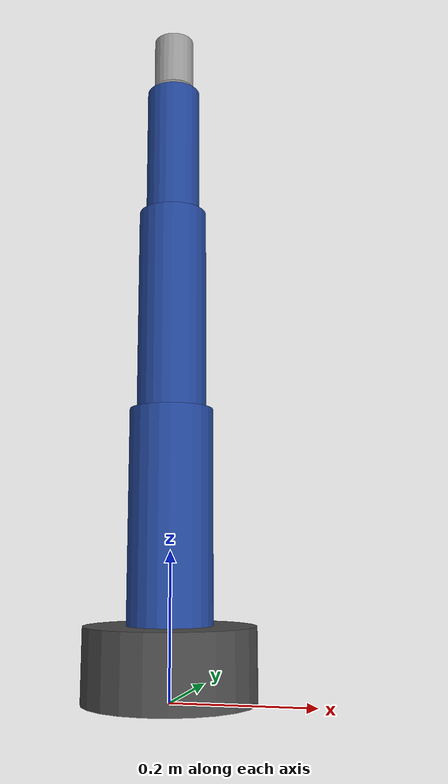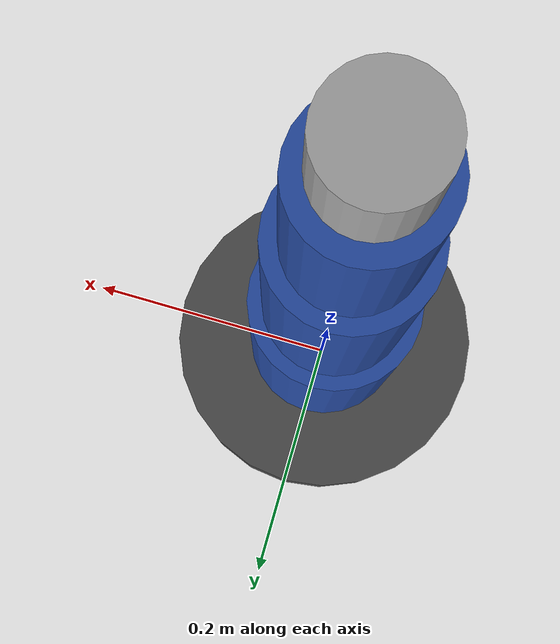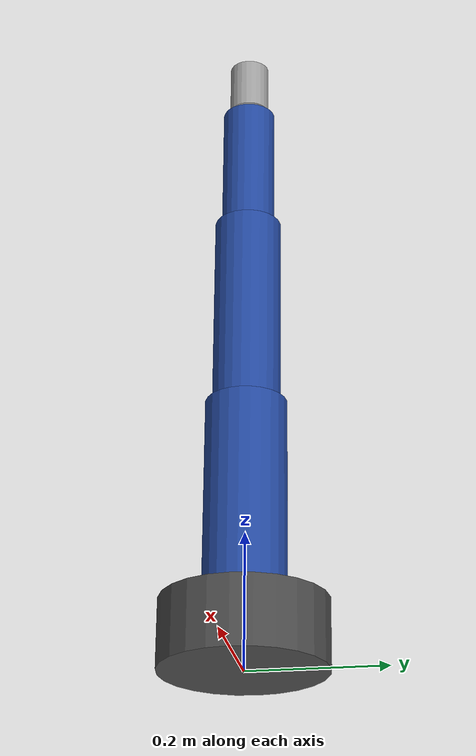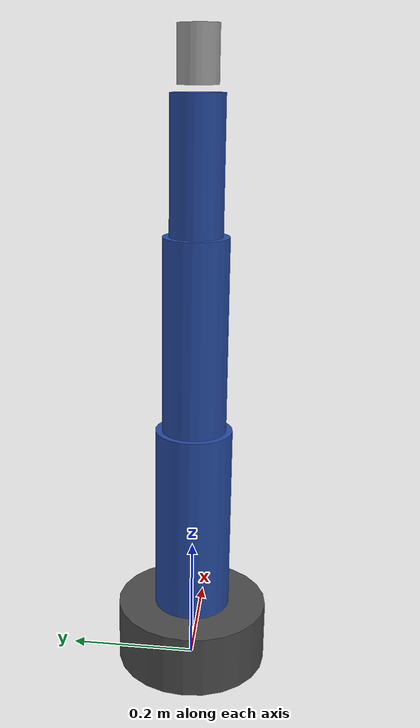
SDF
<?xml version="1.0" ?>
<sdf version="1.9">
  <model name="cobot">
    <static>false</static>

    <!-- Base                                                       -->
    <link name="base_link">
      <pose>0 0 0.05 0 0 0</pose>
      <inertial>
        <mass>10.0</mass>
        <inertia>
          <ixx>0.055</ixx>
          <ixy>0</ixy>
          <ixz>0</ixz>
          <iyy>0.055</iyy>
          <iyz>0</iyz>
          <izz>0.08</izz>
        </inertia>
      </inertial>
      <collision name="base_collision">
        <geometry>
          <cylinder>
            <radius>0.12</radius>
            <length>0.10</length>
          </cylinder>
        </geometry>
      </collision>
      <visual name="base_visual">
        <geometry>
          <cylinder>
            <radius>0.12</radius>
            <length>0.10</length>
          </cylinder>
        </geometry>
        <material>
          <ambient>0.2 0.2 0.2 1.0</ambient>
          <diffuse>0.3 0.3 0.3 1.0</diffuse>
          <specular>0.4 0.4 0.4 1.0</specular>
        </material>
      </visual>
    </link>

    <!-- Shoulder Link                                              -->
    <link name="shoulder_link">
      <pose>0 0 0.25 0 0 0</pose>
      <inertial>
        <mass>5.0</mass>
        <inertia>
          <ixx>0.065</ixx>
          <ixy>0</ixy>
          <ixz>0</ixz>
          <iyy>0.065</iyy>
          <iyz>0</iyz>
          <izz>0.009</izz>
        </inertia>
      </inertial>
      <collision name="shoulder_collision">
        <geometry>
          <cylinder>
            <radius>0.06</radius>
            <length>0.30</length>
          </cylinder>
        </geometry>
      </collision>
      <visual name="shoulder_visual">
        <geometry>
          <cylinder>
            <radius>0.06</radius>
            <length>0.30</length>
          </cylinder>
        </geometry>
        <material>
          <ambient>0.1 0.2 0.5 1.0</ambient>
          <diffuse>0.15 0.3 0.65 1.0</diffuse>
          <specular>0.3 0.3 0.3 1.0</specular>
        </material>
      </visual>
    </link>

    <joint name="shoulder_joint" type="revolute">
      <parent>base_link</parent>
      <child>shoulder_link</child>
      <pose>0 0 -0.15 0 0 0</pose>
      <axis>
        <xyz>0 0 1</xyz>
        <limit>
          <lower>-3.14159</lower>
          <upper>3.14159</upper>
          <effort>100</effort>
          <velocity>1.5</velocity>
        </limit>
        <dynamics>
          <damping>5.0</damping>
          <friction>1.0</friction>
        </dynamics>
      </axis>
    </joint>

    <!-- Upper Arm Link                                             -->
    <link name="upper_arm_link">
      <pose>0 0 0.55 0 0 0</pose>
      <inertial>
        <mass>4.0</mass>
        <inertia>
          <ixx>0.045</ixx>
          <ixy>0</ixy>
          <ixz>0</ixz>
          <iyy>0.045</iyy>
          <iyz>0</iyz>
          <izz>0.006</izz>
        </inertia>
      </inertial>
      <collision name="upper_arm_collision">
        <geometry>
          <cylinder>
            <radius>0.05</radius>
            <length>0.30</length>
          </cylinder>
        </geometry>
      </collision>
      <visual name="upper_arm_visual">
        <geometry>
          <cylinder>
            <radius>0.05</radius>
            <length>0.30</length>
          </cylinder>
        </geometry>
        <material>
          <ambient>0.1 0.2 0.5 1.0</ambient>
          <diffuse>0.15 0.3 0.65 1.0</diffuse>
          <specular>0.3 0.3 0.3 1.0</specular>
        </material>
      </visual>
    </link>

    <joint name="elbow_joint" type="revolute">
      <parent>shoulder_link</parent>
      <child>upper_arm_link</child>
      <pose>0 0 -0.15 0 0 0</pose>
      <axis>
        <xyz>0 1 0</xyz>
        <limit>
          <lower>-2.35619</lower>
          <upper>2.35619</upper>
          <effort>80</effort>
          <velocity>1.5</velocity>
        </limit>
        <dynamics>
          <damping>4.0</damping>
          <friction>0.8</friction>
        </dynamics>
      </axis>
    </joint>

    <!-- Forearm Link                                               -->
    <link name="forearm_link">
      <pose>0 0 0.80 0 0 0</pose>
      <inertial>
        <mass>3.0</mass>
        <inertia>
          <ixx>0.020</ixx>
          <ixy>0</ixy>
          <ixz>0</ixz>
          <iyy>0.020</iyy>
          <iyz>0</iyz>
          <izz>0.004</izz>
        </inertia>
      </inertial>
      <collision name="forearm_collision">
        <geometry>
          <cylinder>
            <radius>0.04</radius>
            <length>0.20</length>
          </cylinder>
        </geometry>
      </collision>
      <visual name="forearm_visual">
        <geometry>
          <cylinder>
            <radius>0.04</radius>
            <length>0.20</length>
          </cylinder>
        </geometry>
        <material>
          <ambient>0.1 0.2 0.5 1.0</ambient>
          <diffuse>0.15 0.3 0.65 1.0</diffuse>
          <specular>0.3 0.3 0.3 1.0</specular>
        </material>
      </visual>
    </link>

    <joint name="wrist_joint" type="revolute">
      <parent>upper_arm_link</parent>
      <child>forearm_link</child>
      <pose>0 0 -0.10 0 0 0</pose>
      <axis>
        <xyz>0 1 0</xyz>
        <limit>
          <lower>-2.35619</lower>
          <upper>2.35619</upper>
          <effort>40</effort>
          <velocity>2.0</velocity>
        </limit>
        <dynamics>
          <damping>2.0</damping>
          <friction>0.5</friction>
        </dynamics>
      </axis>
    </joint>

    <!-- Wrist / End-Effector Link                                  -->
    <link name="wrist_link">
      <pose>0 0 0.95 0 0 0</pose>
      <inertial>
        <mass>1.0</mass>
        <inertia>
          <ixx>0.002</ixx>
          <ixy>0</ixy>
          <ixz>0</ixz>
          <iyy>0.002</iyy>
          <iyz>0</iyz>
          <izz>0.001</izz>
        </inertia>
      </inertial>
      <collision name="wrist_collision">
        <geometry>
          <cylinder>
            <radius>0.03</radius>
            <length>0.08</length>
          </cylinder>
        </geometry>
      </collision>
      <visual name="wrist_visual">
        <geometry>
          <cylinder>
            <radius>0.03</radius>
            <length>0.08</length>
          </cylinder>
        </geometry>
        <material>
          <ambient>0.5 0.5 0.5 1.0</ambient>
          <diffuse>0.65 0.65 0.65 1.0</diffuse>
          <specular>0.5 0.5 0.5 1.0</specular>
        </material>
      </visual>
    </link>

    <joint name="wrist_rotate_joint" type="revolute">
      <parent>forearm_link</parent>
      <child>wrist_link</child>
      <pose>0 0 -0.04 0 0 0</pose>
      <axis>
        <xyz>0 0 1</xyz>
        <limit>
          <lower>-3.14159</lower>
          <upper>3.14159</upper>
          <effort>20</effort>
          <velocity>3.0</velocity>
        </limit>
        <dynamics>
          <damping>1.0</damping>
          <friction>0.3</friction>
        </dynamics>
      </axis>
    </joint>

    <!-- Joint state publisher plugin -->
    <plugin filename="gz-sim-joint-state-publisher-system"
            name="gz::sim::systems::JointStatePublisher">
      <joint_name>shoulder_joint</joint_name>
      <joint_name>elbow_joint</joint_name>
      <joint_name>wrist_joint</joint_name>
      <joint_name>wrist_rotate_joint</joint_name>
    </plugin>

  </model>
</sdf>
